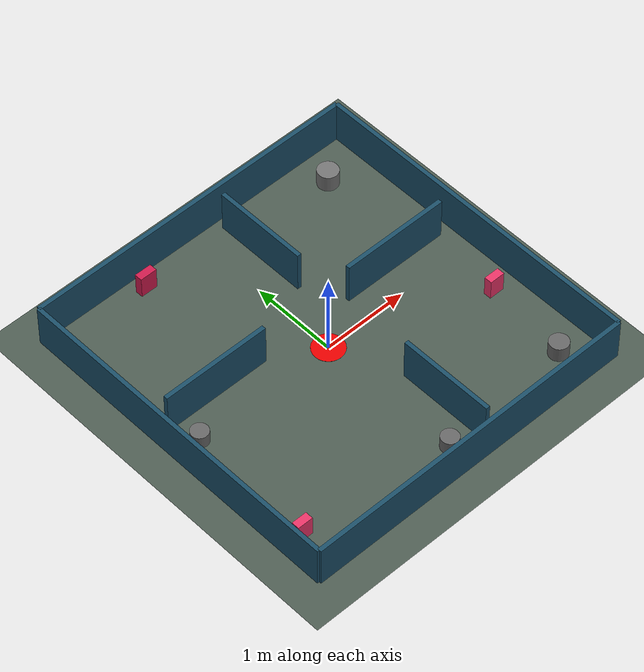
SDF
<?xml version="1.0"?>
<sdf version='1.8'>
  <world name='default'>
    <physics type="ode">
      <real_time_update_rate>500.0</real_time_update_rate>
      <max_step_size>0.002</max_step_size>
      <real_time_factor>1</real_time_factor>
      <ode>
        <solver>
          <type>quick</type>
          <iters>150</iters>
          <precon_iters>0</precon_iters>
          <sor>1.400000</sor>
          <use_dynamic_moi_rescaling>1</use_dynamic_moi_rescaling>
        </solver>
        <constraints>
          <cfm>0.00001</cfm>
          <erp>0.2</erp>
          <contact_max_correcting_vel>2000.000000</contact_max_correcting_vel>
          <contact_surface_layer>0.01000</contact_surface_layer>
        </constraints>
      </ode>
    </physics>
    <plugin filename="gz-sim-physics-system" name="gz::sim::systems::Physics"/>
    <plugin filename="gz-sim-user-commands-system" name="gz::sim::systems::UserCommands"/>
    <plugin filename="gz-sim-scene-broadcaster-system" name="gz::sim::systems::SceneBroadcaster"/>
    <plugin filename="gz-sim-sensors-system" name="gz::sim::systems::Sensors">
      <render_engine>ogre2</render_engine>
    </plugin>
    <plugin filename="gz-sim-imu-system" name="gz::sim::systems::Imu"/>

    <gravity>0 0 -9.8000000000000007</gravity>
    <magnetic_field>5.5644999999999998e-06 2.2875799999999999e-05 -4.2388400000000002e-05</magnetic_field>
    <atmosphere type='adiabatic'/>

    <scene>
      <ambient>0.0799999982 0.119999997 0.180000007 1</ambient>
      <background>0 0.0799999982 0.119999997 1</background>
      <shadows>true</shadows>
      <fog>
        <color>0 0.25 0.300000012 1</color>
        <density>0.025</density>
      </fog>
    </scene>

    <light name='sun' type='directional'>
      <pose>0 0 10 0 0 0</pose>
      <cast_shadows>true</cast_shadows>
      <intensity>1</intensity>
      <direction>-0.5 0.1 -0.9</direction>
      <diffuse>0.800000012 0.800000012 0.800000012 1</diffuse>
      <specular>0.200000003 0.200000003 0.200000003 1</specular>
      <attenuation>
        <range>1000</range>
        <linear>0.01</linear>
        <constant>0.9</constant>
        <quadratic>0.001</quadratic>
      </attenuation>
    </light>

    <!-- Ground plane -->
    <model name='ground_plane'>
      <static>true</static>
      <link name='link'>
        <collision name='collision'>
          <geometry><plane><normal>0 0 1</normal><size>100 100</size></plane></geometry>
          <surface><friction><ode/></friction><bounce/><contact/></surface>
        </collision>
        <visual name='visual'>
          <geometry><plane><normal>0 0 1</normal><size>100 100</size></plane></geometry>
          <material>
            <ambient>0.159999996 0.200000003 0.180000007 1</ambient>
            <diffuse>0.300000012 0.360000014 0.319999993 1</diffuse>
            <specular>0.0199999996 0.0199999996 0.0199999996 1</specular>
          </material>
        </visual>
        <pose>0 0 0 0 0 0</pose>
        <inertial><pose>0 0 0 0 0 0</pose><mass>1</mass><inertia><ixx>1</ixx><ixy>0</ixy><ixz>0</ixz><iyy>1</iyy><iyz>0</iyz><izz>1</izz></inertia></inertial>
        <enable_wind>false</enable_wind>
      </link>
      <pose>0 0 0 0 0 0</pose>
      <self_collide>false</self_collide>
    </model>

    <!-- OUTER BOUNDARY WALLS — Arena: -2.0 to 2.0 (4x4m) -->
    <model name='wall_north'>
      <static>true</static>
      <pose>0 2.0 0.25 0 0 0</pose>
      <link name='link'>
        <collision name='collision'><geometry><box><size>4.0 0.05 0.5</size></box></geometry><surface><friction><ode/></friction><bounce/><contact/></surface></collision>
        <visual name='visual'><geometry><box><size>4.0 0.05 0.5</size></box></geometry><material><ambient>0.1 0.3 0.4 1</ambient><diffuse>0.1 0.3 0.4 1</diffuse><specular>0.5 0.5 0.5 1</specular></material></visual>
        <pose>0 0 0 0 0 0</pose><inertial><pose>0 0 0 0 0 0</pose><mass>1</mass><inertia><ixx>1</ixx><ixy>0</ixy><ixz>0</ixz><iyy>1</iyy><iyz>0</iyz><izz>1</izz></inertia></inertial>
      </link><self_collide>false</self_collide>
    </model>

    <model name='wall_south'>
      <static>true</static>
      <pose>0 -2.0 0.25 0 0 0</pose>
      <link name='link'>
        <collision name='collision'><geometry><box><size>4.0 0.05 0.5</size></box></geometry><surface><friction><ode/></friction><bounce/><contact/></surface></collision>
        <visual name='visual'><geometry><box><size>4.0 0.05 0.5</size></box></geometry><material><ambient>0.1 0.3 0.4 1</ambient><diffuse>0.1 0.3 0.4 1</diffuse><specular>0.5 0.5 0.5 1</specular></material></visual>
        <pose>0 0 0 0 0 0</pose><inertial><pose>0 0 0 0 0 0</pose><mass>1</mass><inertia><ixx>1</ixx><ixy>0</ixy><ixz>0</ixz><iyy>1</iyy><iyz>0</iyz><izz>1</izz></inertia></inertial>
      </link><self_collide>false</self_collide>
    </model>

    <model name='wall_east'>
      <static>true</static>
      <pose>2.0 0 0.25 0 0 0</pose>
      <link name='link'>
        <collision name='collision'><geometry><box><size>0.05 4.0 0.5</size></box></geometry><surface><friction><ode/></friction><bounce/><contact/></surface></collision>
        <visual name='visual'><geometry><box><size>0.05 4.0 0.5</size></box></geometry><material><ambient>0.1 0.3 0.4 1</ambient><diffuse>0.1 0.3 0.4 1</diffuse><specular>0.5 0.5 0.5 1</specular></material></visual>
        <pose>0 0 0 0 0 0</pose><inertial><pose>0 0 0 0 0 0</pose><mass>1</mass><inertia><ixx>1</ixx><ixy>0</ixy><ixz>0</ixz><iyy>1</iyy><iyz>0</iyz><izz>1</izz></inertia></inertial>
      </link><self_collide>false</self_collide>
    </model>

    <model name='wall_west'>
      <static>true</static>
      <pose>-2.0 0 0.25 0 0 0</pose>
      <link name='link'>
        <collision name='collision'><geometry><box><size>0.05 4.0 0.5</size></box></geometry><surface><friction><ode/></friction><bounce/><contact/></surface></collision>
        <visual name='visual'><geometry><box><size>0.05 4.0 0.5</size></box></geometry><material><ambient>0.1 0.3 0.4 1</ambient><diffuse>0.1 0.3 0.4 1</diffuse><specular>0.5 0.5 0.5 1</specular></material></visual>
        <pose>0 0 0 0 0 0</pose><inertial><pose>0 0 0 0 0 0</pose><mass>1</mass><inertia><ixx>1</ixx><ixy>0</ixy><ixz>0</ixz><iyy>1</iyy><iyz>0</iyz><izz>1</izz></inertia></inertial>
      </link><self_collide>false</self_collide>
    </model>

    <!-- INTERNAL PARTIAL WALLS -->
    <model name='wall_h1_left'>
      <static>true</static>
      <pose>-1.2 0.32 0.25 0 0 0</pose>
      <link name='link'>
        <collision name='collision'><geometry><box><size>1.28 0.05 0.5</size></box></geometry><surface><friction><ode/></friction><bounce/><contact/></surface></collision>
        <visual name='visual'><geometry><box><size>1.28 0.05 0.5</size></box></geometry><material><ambient>0.1 0.3 0.4 1</ambient><diffuse>0.1 0.3 0.4 1</diffuse><specular>0.5 0.5 0.5 1</specular></material></visual>
        <pose>0 0 0 0 0 0</pose><inertial><pose>0 0 0 0 0 0</pose><mass>1</mass><inertia><ixx>1</ixx><ixy>0</ixy><ixz>0</ixz><iyy>1</iyy><iyz>0</iyz><izz>1</izz></inertia></inertial>
      </link><self_collide>false</self_collide>
    </model>

    <model name='wall_h1_right'>
      <static>true</static>
      <pose>1.2 0.32 0.25 0 0 0</pose>
      <link name='link'>
        <collision name='collision'><geometry><box><size>1.28 0.05 0.5</size></box></geometry><surface><friction><ode/></friction><bounce/><contact/></surface></collision>
        <visual name='visual'><geometry><box><size>1.28 0.05 0.5</size></box></geometry><material><ambient>0.1 0.3 0.4 1</ambient><diffuse>0.1 0.3 0.4 1</diffuse><specular>0.5 0.5 0.5 1</specular></material></visual>
        <pose>0 0 0 0 0 0</pose><inertial><pose>0 0 0 0 0 0</pose><mass>1</mass><inertia><ixx>1</ixx><ixy>0</ixy><ixz>0</ixz><iyy>1</iyy><iyz>0</iyz><izz>1</izz></inertia></inertial>
      </link><self_collide>false</self_collide>
    </model>

    <model name='wall_v1_top'>
      <static>true</static>
      <pose>0.32 1.32 0.25 0 0 0</pose>
      <link name='link'>
        <collision name='collision'><geometry><box><size>0.05 1.12 0.5</size></box></geometry><surface><friction><ode/></friction><bounce/><contact/></surface></collision>
        <visual name='visual'><geometry><box><size>0.05 1.12 0.5</size></box></geometry><material><ambient>0.1 0.3 0.4 1</ambient><diffuse>0.1 0.3 0.4 1</diffuse><specular>0.5 0.5 0.5 1</specular></material></visual>
        <pose>0 0 0 0 0 0</pose><inertial><pose>0 0 0 0 0 0</pose><mass>1</mass><inertia><ixx>1</ixx><ixy>0</ixy><ixz>0</ixz><iyy>1</iyy><iyz>0</iyz><izz>1</izz></inertia></inertial>
      </link><self_collide>false</self_collide>
    </model>

    <model name='wall_v1_bottom'>
      <static>true</static>
      <pose>0.32 -1.32 0.25 0 0 0</pose>
      <link name='link'>
        <collision name='collision'><geometry><box><size>0.05 1.12 0.5</size></box></geometry><surface><friction><ode/></friction><bounce/><contact/></surface></collision>
        <visual name='visual'><geometry><box><size>0.05 1.12 0.5</size></box></geometry><material><ambient>0.1 0.3 0.4 1</ambient><diffuse>0.1 0.3 0.4 1</diffuse><specular>0.5 0.5 0.5 1</specular></material></visual>
        <pose>0 0 0 0 0 0</pose><inertial><pose>0 0 0 0 0 0</pose><mass>1</mass><inertia><ixx>1</ixx><ixy>0</ixy><ixz>0</ixz><iyy>1</iyy><iyz>0</iyz><izz>1</izz></inertia></inertial>
      </link><self_collide>false</self_collide>
    </model>

    <!-- ORIGIN POINT -->
    <model name='origin_point'>
      <static>true</static>
      <pose>0 0 0.001 0 0 0</pose>
      <link name='link'>
        <collision name='collision'><geometry><cylinder><radius>0.18</radius><length>0.002</length></cylinder></geometry><surface><friction><ode/></friction><bounce/><contact/></surface></collision>
        <visual name='visual'><geometry><cylinder><radius>0.18</radius><length>0.002</length></cylinder></geometry><material><ambient>0.9 0 0 1</ambient><diffuse>0.9 0 0 1</diffuse><specular>1 1 1 1</specular></material></visual>
        <pose>0 0 0 0 0 0</pose><inertial><pose>0 0 0 0 0 0</pose><mass>1</mass><inertia><ixx>1</ixx><ixy>0</ixy><ixz>0</ixz><iyy>1</iyy><iyz>0</iyz><izz>1</izz></inertia></inertial>
        <enable_wind>false</enable_wind>
      </link><self_collide>false</self_collide>
    </model>

    <!-- ROCKS — corners only, keep collision -->
    <model name='rock_1'>
      <static>true</static>
      <pose>1.6 -1.6 0.09 0 0 0</pose>
      <link name='link'>
        <collision name='collision'><geometry><cylinder><radius>0.11</radius><length>0.18</length></cylinder></geometry><surface><friction><ode/></friction><bounce/><contact/></surface></collision>
        <visual name='visual'><geometry><cylinder><radius>0.11</radius><length>0.18</length></cylinder></geometry><material><ambient>0.4 0.4 0.4 1</ambient><diffuse>0.4 0.4 0.4 1</diffuse><specular>0.1 0.1 0.1 1</specular></material></visual>
      </link><self_collide>false</self_collide>
    </model>

    <model name='rock_2'>
      <static>true</static>
      <pose>-1.7 0.0 0.09 0 0 0</pose>
      <link name='link'>
        <collision name='collision'><geometry><cylinder><radius>0.10</radius><length>0.15</length></cylinder></geometry><surface><friction><ode/></friction><bounce/><contact/></surface></collision>
        <visual name='visual'><geometry><cylinder><radius>0.10</radius><length>0.15</length></cylinder></geometry><material><ambient>0.4 0.4 0.4 1</ambient><diffuse>0.4 0.4 0.4 1</diffuse><specular>0.1 0.1 0.1 1</specular></material></visual>
      </link><self_collide>false</self_collide>
    </model>

    <model name='rock_3'>
      <static>true</static>
      <pose>1.5 1.6 0.09 0 0 0</pose>
      <link name='link'>
        <collision name='collision'><geometry><cylinder><radius>0.12</radius><length>0.20</length></cylinder></geometry><surface><friction><ode/></friction><bounce/><contact/></surface></collision>
        <visual name='visual'><geometry><cylinder><radius>0.12</radius><length>0.20</length></cylinder></geometry><material><ambient>0.45 0.45 0.45 1</ambient><diffuse>0.45 0.45 0.45 1</diffuse><specular>0.1 0.1 0.1 1</specular></material></visual>
      </link><self_collide>false</self_collide>
    </model>

    <model name='rock_4'>
      <static>true</static>
      <pose>0.0 -1.7 0.09 0 0 0</pose>
      <link name='link'>
        <collision name='collision'><geometry><cylinder><radius>0.10</radius><length>0.16</length></cylinder></geometry><surface><friction><ode/></friction><bounce/><contact/></surface></collision>
        <visual name='visual'><geometry><cylinder><radius>0.10</radius><length>0.16</length></cylinder></geometry><material><ambient>0.4 0.4 0.4 1</ambient><diffuse>0.4 0.4 0.4 1</diffuse><specular>0.1 0.1 0.1 1</specular></material></visual>
      </link><self_collide>false</self_collide>
    </model>

    <!-- CORAL REEFS — edges only, keep collision -->
    <model name='coral_1'>
      <static>true</static>
      <pose>1.7 -0.6 0.12 0 0 0</pose>
      <link name='link'>
        <collision name='collision'><geometry><box><size>0.18 0.09 0.24</size></box></geometry><surface><friction><ode/></friction><bounce/><contact/></surface></collision>
        <visual name='visual'><geometry><box><size>0.18 0.09 0.24</size></box></geometry><material><ambient>0.9 0.2 0.4 1</ambient><diffuse>0.9 0.2 0.4 1</diffuse><specular>0.5 0.5 0.5 1</specular></material></visual>
      </link><self_collide>false</self_collide>
    </model>

    <model name='coral_2'>
      <static>true</static>
      <pose>-0.8 1.8 0.12 0 0 0</pose>
      <link name='link'>
        <collision name='collision'><geometry><box><size>0.20 0.09 0.26</size></box></geometry><surface><friction><ode/></friction><bounce/><contact/></surface></collision>
        <visual name='visual'><geometry><box><size>0.20 0.09 0.26</size></box></geometry><material><ambient>0.8 0.1 0.3 1</ambient><diffuse>0.8 0.1 0.3 1</diffuse><specular>0.5 0.5 0.5 1</specular></material></visual>
      </link><self_collide>false</self_collide>
    </model>

    <model name='coral_3'>
      <static>true</static>
      <pose>-1.75 -1.5 0.12 0 0 0</pose>
      <link name='link'>
        <collision name='collision'><geometry><box><size>0.18 0.09 0.24</size></box></geometry><surface><friction><ode/></friction><bounce/><contact/></surface></collision>
        <visual name='visual'><geometry><box><size>0.18 0.09 0.24</size></box></geometry><material><ambient>0.9 0.2 0.4 1</ambient><diffuse>0.9 0.2 0.4 1</diffuse><specular>0.5 0.5 0.5 1</specular></material></visual>
      </link><self_collide>false</self_collide>
    </model>

  </world>
</sdf>
